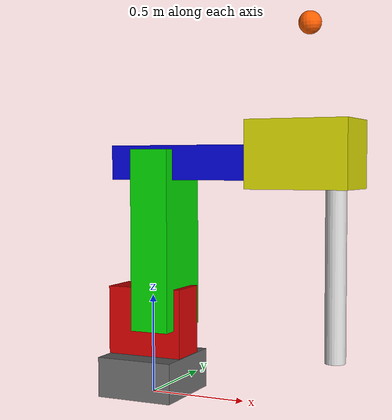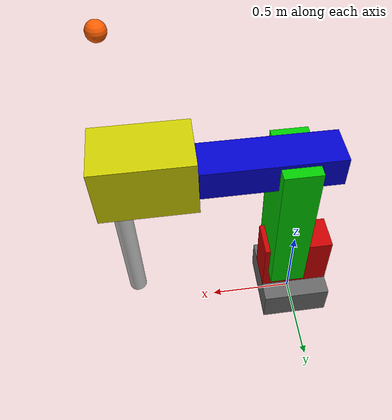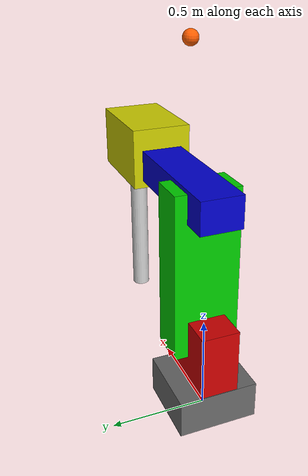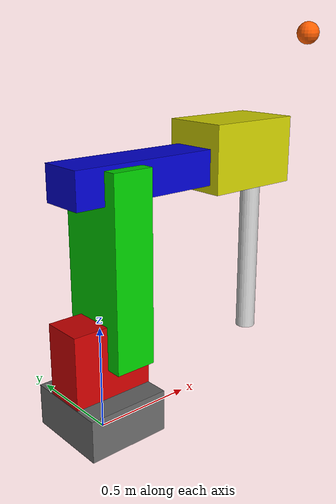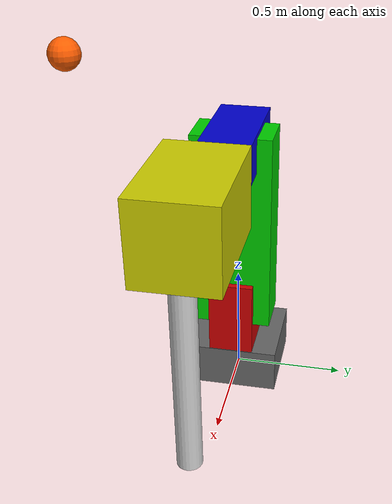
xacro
<robot name = "robostylus" xmlns:xacro = "http://www.ros.org/wiki/xacro">
    <!-- All distance values in dm -->

    <link name="base">
        <visual>
            <geometry>
                <box size="0.4 0.42 0.2"/>
            </geometry>
            <origin xyz="0 0 0.1" rpy="0 0 0"/>
            <material name="gray">
                <color rgba = "0.4 0.4 0.4 1"/>
            </material>
        </visual>
    </link>

    <joint name = "base_to_shoulder" type = "revolute">
		<parent link = "base"/>
		<child link = "shoulder"/>

		<origin xyz = "${(0.4/2)-0.13} 0 0.2" rpy = "0 0 0"/>
		<axis xyz = "0 0 1"/>

		<limit lower = "${-pi/3}" upper = "${pi/3}" effort = "1.0" velocity = "1.0"/>
	</joint>

    <link name="shoulder">
        <visual>
            <geometry>
                <box size="0.4 0.2 0.3455"/>
            </geometry>
            <origin xyz="${-((0.4/2)-0.13)} 0 ${0.35/2}" rpy="0 0 0"/>
            <material name="red">
                <color rgba = "0.8 0 0 1"/>
            </material>
        </visual>
    </link>

    <joint name = "shoulder_to_arm" type = "revolute">
		<parent link = "shoulder"/>
		<child link = "arm"/>

		<origin xyz = "0 0 0.24" rpy = "0 0 0"/>
		<axis xyz = "0 1 0"/>

		<limit lower = "${-pi/3}" upper = "${pi/3}" effort = "1.0" velocity = "1.0"/>
	</joint>

    <link name="arm">
        <visual>
            <geometry>
                <box size="0.2 0.348 0.9"/>
            </geometry>
            <origin xyz="0 0 ${(0.9/2)-0.1}" rpy="0 0 0"/>
            <material name="green">
                <color rgba = "0 0.8 0 1"/>
            </material>
        </visual>
    </link>

    <joint name = "arm_to_forearm" type = "revolute">
		<parent link = "arm"/>
		<child link = "forearm"/>

		<origin xyz = "0 0 0.71" rpy = "0 0 0"/>
		<axis xyz = "0 1 0"/>

		<limit lower = "${-pi/3}" upper = "${pi/3}" effort = "1.0" velocity = "1.0"/>
	</joint>

    <link name="forearm">
        <visual>
            <geometry>
                <box size="0.94 0.22 0.17"/>
            </geometry>
            <origin xyz="${(0.94/2)-0.24} 0 ${(0.17/2)-0.06}" rpy="0 0 0"/>
            <material name="blue">
                <color rgba = "0 0 0.8 1"/>
            </material>
        </visual>
    </link>

    <joint name = "forearm_to_wrist" type = "revolute">
		<parent link = "forearm"/>
		<child link = "wrist"/>

		<origin xyz = "0.6 0 0" rpy = "0 0 0"/>
		<axis xyz = "0 1 0"/>

		<limit lower = "${-pi/3}" upper = "${pi/3}" effort = "1.0" velocity = "1.0"/>
	</joint>

    <link name="wrist">
        <visual>
            <geometry>
                <box size="0.5 0.32 0.326"/>
            </geometry>
            <origin xyz="${(0.5/2)-0.1} 0 ${(0.326/2)-0.1}" rpy="0 0 0"/>
            <material name="yellow">
                <color rgba = "0.8 0.8 0 1"/>
            </material>
        </visual>
    </link>

    <joint name = "wrist_to_end_effector" type = "fixed">
		<parent link = "wrist"/>
		<child link = "end_effector"/>

		<origin xyz = "0.3 0 -0.917" rpy = "0 0 0"/>
	</joint>

    <link name="end_effector">
        <visual>
            <geometry>
                <cylinder radius="0.05" length="0.917"/>
            </geometry>
            <origin xyz="0 0 ${0.917/2}" rpy="0 0 0"/>
            <material name="white">
                <color rgba = "0.8 0.8 0.8 1"/>
            </material>
        </visual>
    </link>

    <link name="camera">
        <visual>
            <geometry>
                <sphere radius="0.05"/>
            </geometry>
            <origin xyz="0 0 0" rpy="0 0 0"/>
            <material name="orange">
                <color rgba = "1 0.364705882 0 1"/>
            </material>
        </visual>
    </link>

    <joint name = "base_to_camera" type = "fixed">
		<parent link = "base"/>
		<child link = "camera"/>

		<origin xyz = "0.95 -0.33 1.77" rpy = "${pi-0.060396603154698816} ${-0.034311527493172685} ${pi/2+0.04713616327836247}"/>
	</joint>

    <xacro:property name = "pi" value = "3.1415926535897931"/>

</robot>
